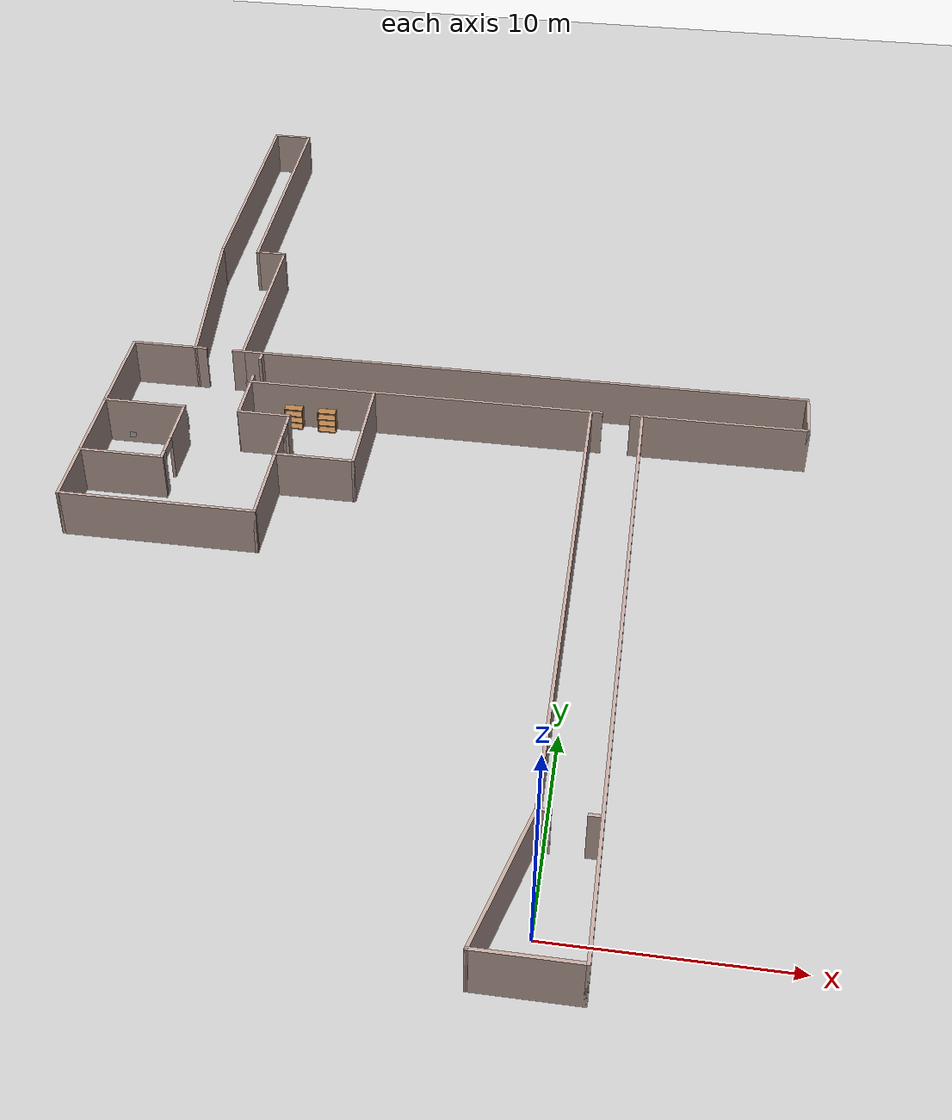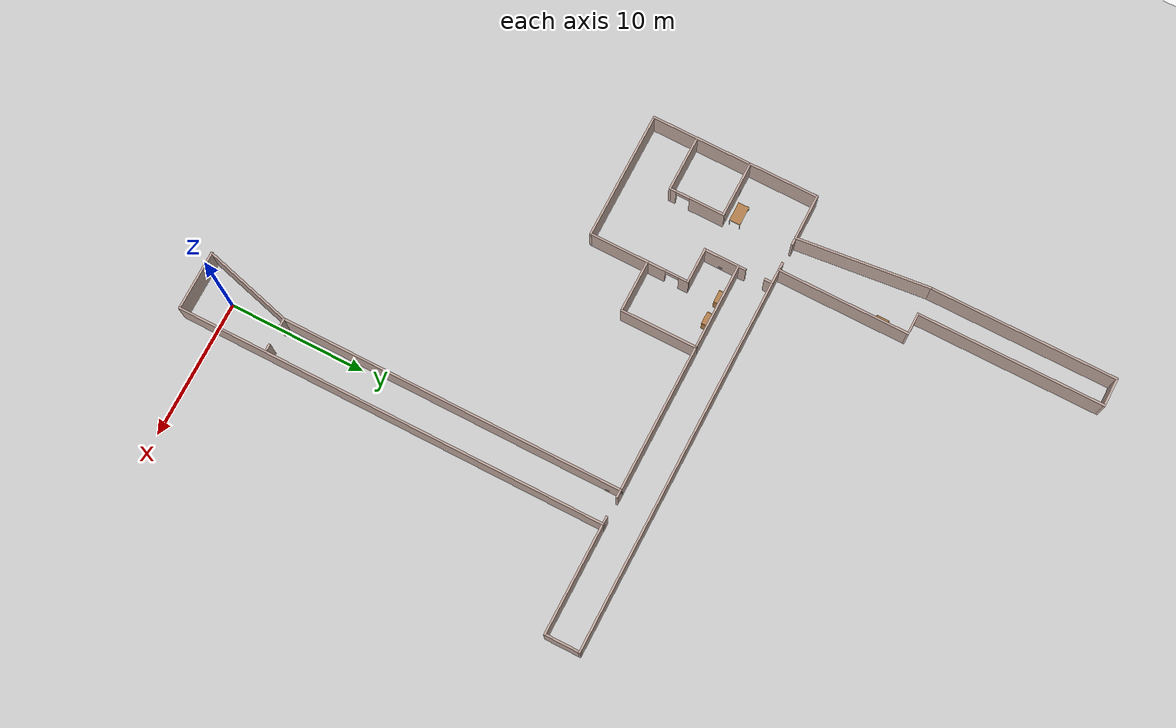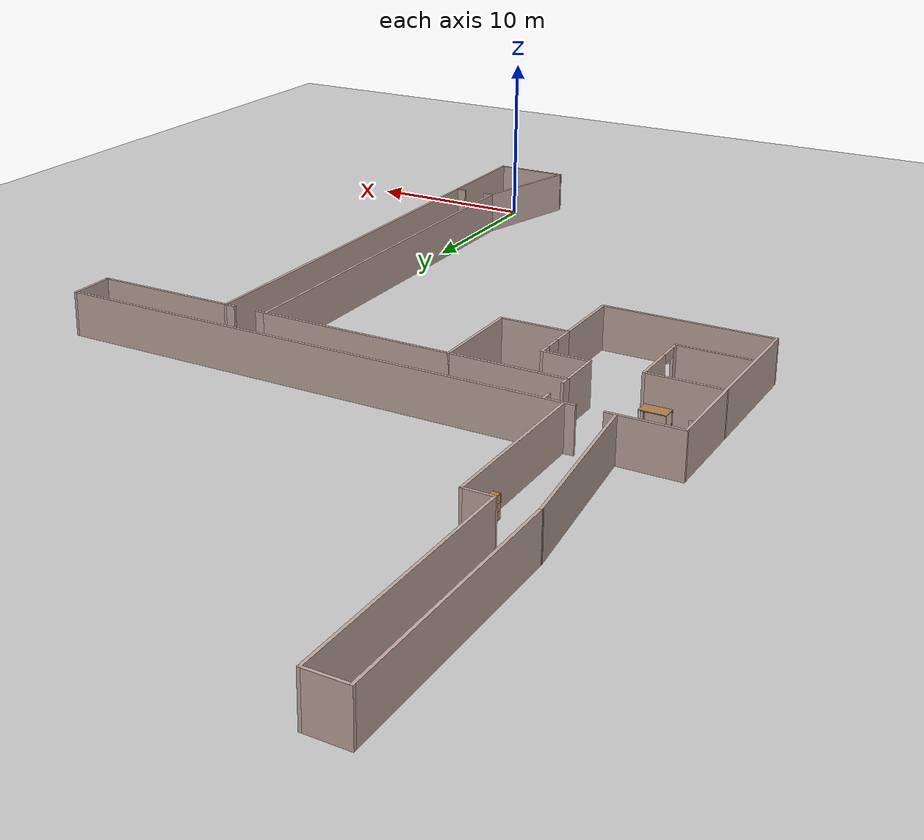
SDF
<sdf version="1.6">
 <world name="default">
  <model name="ground_plane">
   <static>1</static>
   <link name="link">
    <collision name="collision">
     <geometry><plane><normal>0 0 1</normal><size>100 100</size></plane></geometry>
     <surface><friction><ode><mu>100</mu><mu2>50</mu2></ode></friction></surface>
    </collision>
    <visual name="visual">
     <cast_shadows>0</cast_shadows>
     <geometry><plane><normal>0 0 1</normal><size>100 120</size></plane></geometry>
     <material>
      <script><uri>file://media/materials/scripts/gazebo.material</uri><name>Gazebo/Grey</name></script>
     </material>
    </visual>
   </link>
  </model>
  <model name="utias2">
   <pose>-6.98603 26.1314 -0.100807 0 -0 0</pose>
   <link name="Wall_0">
    <collision name="Wall_0_Collision">
     <geometry><box><size>4.4 0.15 2.5</size></box></geometry>
     <pose>0 0 1.25 0 -0 0</pose>
    </collision>
    <visual name="Wall_0_Visual">
     <pose>0 0 1.25 0 -0 0</pose>
     <geometry><box><size>4.4 0.15 2.5</size></box></geometry>
     <material>
      <script><uri>file://media/materials/scripts/gazebo.material</uri><name>Gazebo/Grey</name></script>
      <ambient>0.760784 0.662745 0.627451 1</ambient>
     </material>
    </visual>
    <pose>7.00014 -28.4915 0 0 -0 0</pose>
   </link>
   <link name="Wall_1">
    <collision name="Wall_1_Collision">
     <geometry><box><size>31.65 0.15 2.5</size></box></geometry>
     <pose>0 0 1.25 0 -0 0</pose>
    </collision>
    <visual name="Wall_1_Visual">
     <pose>0 0 1.25 0 -0 0</pose>
     <geometry><box><size>31.65 0.15 2.5</size></box></geometry>
     <material>
      <script><uri>file://media/materials/scripts/gazebo.material</uri><name>Gazebo/Grey</name></script>
      <ambient>0.760784 0.662745 0.627451 1</ambient>
     </material>
    </visual>
    <pose>9.12514 -12.7415 0 0 -0 1.5708</pose>
   </link>
   <link name="Wall_10">
    <collision name="Wall_10_Collision">
     <geometry><box><size>9.70249 0.15 2.5</size></box></geometry>
     <pose>0 0 1.25 0 -0 0</pose>
    </collision>
    <visual name="Wall_10_Visual">
     <pose>0 0 1.25 0 -0 0</pose>
     <geometry><box><size>9.70249 0.15 2.5</size></box></geometry>
     <material>
      <script><uri>file://media/materials/scripts/gazebo.material</uri><name>Gazebo/Grey</name></script>
      <ambient>0.760784 0.662745 0.627451 1</ambient>
     </material>
    </visual>
    <pose>-14.3749 10.2585 0 0 0 -1.46592</pose>
   </link>
   <link name="Wall_12">
    <collision name="Wall_12_Collision">
     <geometry><box><size>3.4 0.15 2.5</size></box></geometry>
     <pose>0 0 1.25 0 -0 0</pose>
    </collision>
    <visual name="Wall_12_Visual">
     <pose>0 0 1.25 0 -0 0</pose>
     <geometry><box><size>3.4 0.15 2.5</size></box></geometry>
     <material>
      <script><uri>file://media/materials/scripts/gazebo.material</uri><name>Gazebo/Grey</name></script>
      <ambient>0.760784 0.662745 0.627451 1</ambient>
     </material>
    </visual>
    <pose>-15.4999 5.50846 0 0 -0 3.14159</pose>
   </link>
   <link name="Wall_14">
    <collision name="Wall_14_Collision">
     <geometry><box><size>12.4 0.15 2.5</size></box></geometry>
     <pose>0 0 1.25 0 -0 0</pose>
    </collision>
    <visual name="Wall_14_Visual">
     <pose>0 0 1.25 0 -0 0</pose>
     <geometry><box><size>12.4 0.15 2.5</size></box></geometry>
     <material>
      <script><uri>file://media/materials/scripts/gazebo.material</uri><name>Gazebo/Grey</name></script>
      <ambient>0.760784 0.662745 0.627451 1</ambient>
     </material>
    </visual>
    <pose>-17.1249 -0.616541 0 0 0 -1.5708</pose>
   </link>
   <link name="Wall_15">
    <collision name="Wall_15_Collision">
     <geometry><box><size>9.40054 0.15 2.5</size></box></geometry>
     <pose>0 0 1.25 0 -0 0</pose>
    </collision>
    <visual name="Wall_15_Visual">
     <pose>0 0 1.25 0 -0 0</pose>
     <geometry><box><size>9.40054 0.15 2.5</size></box></geometry>
     <material>
      <script><uri>file://media/materials/scripts/gazebo.material</uri><name>Gazebo/Grey</name></script>
      <ambient>0.760784 0.662745 0.627451 1</ambient>
     </material>
    </visual>
    <pose>-12.4999 -6.74154 0 0 -0 0</pose>
   </link>
   <link name="Wall_16">
    <collision name="Wall_16_Collision">
     <geometry><box><size>4.4 0.15 2.5</size></box></geometry>
     <pose>0 0 1.25 0 -0 0</pose>
    </collision>
    <visual name="Wall_16_Visual">
     <pose>0 0 1.25 0 -0 0</pose>
     <geometry><box><size>4.4 0.15 2.5</size></box></geometry>
     <material>
      <script><uri>file://media/materials/scripts/gazebo.material</uri><name>Gazebo/Grey</name></script>
      <ambient>0.760784 0.662745 0.627451 1</ambient>
     </material>
    </visual>
    <pose>-7.87486 -4.61654 0 0 -0 1.5708</pose>
   </link>
   <link name="Wall_17">
    <collision name="Wall_17_Collision">
     <geometry><box><size>3.9 0.15 2.5</size></box></geometry>
     <pose>0 0 1.25 0 -0 0</pose>
    </collision>
    <visual name="Wall_17_Visual">
     <pose>0 0 1.25 0 -0 0</pose>
     <geometry><box><size>3.9 0.15 2.5</size></box></geometry>
     <material>
      <script><uri>file://media/materials/scripts/gazebo.material</uri><name>Gazebo/Grey</name></script>
      <ambient>0.760784 0.662745 0.627451 1</ambient>
     </material>
    </visual>
    <pose>-5.99986 -2.49154 0 0 -0 0</pose>
   </link>
   <link name="Wall_18">
    <collision name="Wall_18_Collision">
     <geometry><box><size>5.65 0.15 2.5</size></box></geometry>
     <pose>0 0 1.25 0 -0 0</pose>
    </collision>
    <visual name="Wall_18_Visual">
     <pose>0 0 1.25 0 -0 0</pose>
     <geometry><box><size>5.65 0.15 2.5</size></box></geometry>
     <material>
      <script><uri>file://media/materials/scripts/gazebo.material</uri><name>Gazebo/Grey</name></script>
      <ambient>0.760784 0.662745 0.627451 1</ambient>
     </material>
    </visual>
    <pose>-4.12486 0.258459 0 0 -0 1.5708</pose>
   </link>
   <link name="Wall_19">
    <collision name="Wall_19_Collision">
     <geometry><box><size>10.9 0.15 2.5</size></box></geometry>
     <pose>0 0 1.25 0 -0 0</pose>
    </collision>
    <visual name="Wall_19_Visual">
     <pose>0 0 1.25 0 -0 0</pose>
     <geometry><box><size>10.9 0.15 2.5</size></box></geometry>
     <material>
      <script><uri>file://media/materials/scripts/gazebo.material</uri><name>Gazebo/Grey</name></script>
      <ambient>0.760784 0.662745 0.627451 1</ambient>
     </material>
    </visual>
    <pose>1.25014 3.00846 0 0 -0 0</pose>
   </link>
   <link name="Wall_2">
    <collision name="Wall_2_Collision">
     <geometry><box><size>8.15 0.15 2.5</size></box></geometry>
     <pose>0 0 1.25 0 -0 0</pose>
    </collision>
    <visual name="Wall_2_Visual">
     <pose>0 0 1.25 0 -0 0</pose>
     <geometry><box><size>8.15 0.15 2.5</size></box></geometry>
     <material>
      <script><uri>file://media/materials/scripts/gazebo.material</uri><name>Gazebo/Grey</name></script>
      <ambient>0.760784 0.662745 0.627451 1</ambient>
     </material>
    </visual>
    <pose>13.1251 3.00846 0 0 -0 0</pose>
   </link>
   <link name="Wall_21">
    <collision name="Wall_21_Collision">
     <geometry><box><size>6.4 0.15 2.5</size></box></geometry>
     <pose>0 0 1.25 0 -0 0</pose>
    </collision>
    <visual name="Wall_21_Visual">
     <pose>0 0 1.25 0 -0 0</pose>
     <geometry><box><size>6.4 0.15 2.5</size></box></geometry>
     <material>
      <script><uri>file://media/materials/scripts/gazebo.material</uri><name>Gazebo/Grey</name></script>
      <ambient>0.760784 0.662745 0.627451 1</ambient>
     </material>
    </visual>
    <pose>-7.24986 3.00846 0 0 -0 3.14159</pose>
   </link>
   <link name="Wall_22">
    <collision name="Wall_22_Collision">
     <geometry><box><size>2.65 0.15 2.5</size></box></geometry>
     <pose>0 0 1.25 0 -0 0</pose>
    </collision>
    <visual name="Wall_22_Visual">
     <pose>0 0 1.25 0 -0 0</pose>
     <geometry><box><size>2.65 0.15 2.5</size></box></geometry>
     <material>
      <script><uri>file://media/materials/scripts/gazebo.material</uri><name>Gazebo/Grey</name></script>
      <ambient>0.760784 0.662745 0.627451 1</ambient>
     </material>
    </visual>
    <pose>-10.3749 1.75846 0 0 0 -1.5708</pose>
   </link>
   <link name="Wall_23">
    <collision name="Wall_23_Collision">
     <geometry><box><size>2.65 0.15 2.5</size></box></geometry>
     <pose>0 0 1.25 0 -0 0</pose>
    </collision>
    <visual name="Wall_23_Visual">
     <pose>0 0 1.25 0 -0 0</pose>
     <geometry><box><size>2.65 0.15 2.5</size></box></geometry>
     <material>
      <script><uri>file://media/materials/scripts/gazebo.material</uri><name>Gazebo/Grey</name></script>
      <ambient>0.760784 0.662745 0.627451 1</ambient>
     </material>
    </visual>
    <pose>-9.12486 0.508459 0 0 -0 0</pose>
   </link>
   <link name="Wall_24">
    <pose>-7.87486 -0.991541 0 0 0 -1.5708</pose>
    <visual name="Wall_24_Visual_0">
     <pose>-1.20455 0 1.25 0 -0 0</pose>
     <geometry><box><size>0.740907 0.15 2.5</size></box></geometry>
     <material>
      <script><uri>file://media/materials/scripts/gazebo.material</uri><name>Gazebo/Grey</name></script>
      <ambient>0.760784 0.662745 0.627451 1</ambient>
     </material>
    </visual>
    <collision name="Wall_24_Collision_0">
     <geometry><box><size>0.740907 0.15 2.5</size></box></geometry>
     <pose>-1.20455 0 1.25 0 -0 0</pose>
    </collision>
    <visual name="Wall_24_Visual_1">
     <pose>0.870453 0 1.25 0 -0 0</pose>
     <geometry><box><size>1.40909 0.15 2.5</size></box></geometry>
     <material>
      <script><uri>file://media/materials/scripts/gazebo.material</uri><name>Gazebo/Grey</name></script>
      <ambient>0.760784 0.662745 0.627451 1</ambient>
     </material>
    </visual>
    <collision name="Wall_24_Collision_1">
     <geometry><box><size>1.40909 0.15 2.5</size></box></geometry>
     <pose>0.870453 0 1.25 0 -0 0</pose>
    </collision>
    <visual name="Wall_24_Visual_2">
     <pose>-0.334093 0 2.25 0 -0 0</pose>
     <geometry><box><size>1 0.15 0.5</size></box></geometry>
     <material>
      <script><uri>file://media/materials/scripts/gazebo.material</uri><name>Gazebo/Grey</name></script>
      <ambient>0.760784 0.662745 0.627451 1</ambient>
     </material>
    </visual>
    <collision name="Wall_24_Collision_2">
     <geometry><box><size>1 0.15 0.5</size></box></geometry>
     <pose>-0.334093 0 2.25 0 -0 0</pose>
    </collision>
   </link>
   <link name="Wall_26">
    <collision name="Wall_26_Collision">
     <geometry><box><size>4.15 0.15 2.5</size></box></geometry>
     <pose>0 0 1.25 0 -0 0</pose>
    </collision>
    <visual name="Wall_26_Visual">
     <pose>0 0 1.25 0 -0 0</pose>
     <geometry><box><size>4.15 0.15 2.5</size></box></geometry>
     <material>
      <script><uri>file://media/materials/scripts/gazebo.material</uri><name>Gazebo/Grey</name></script>
      <ambient>0.760784 0.662745 0.627451 1</ambient>
     </material>
    </visual>
    <pose>-15.1249 0.508459 0 0 -0 0</pose>
   </link>
   <link name="Wall_27">
    <pose>-13.1249 -1.49154 0 0 0 -1.5708</pose>
    <visual name="Wall_27_Visual_0">
     <pose>-0.771545 0 1.25 0 -0 0</pose>
     <geometry><box><size>2.60691 0.15 2.5</size></box></geometry>
     <material>
      <script><uri>file://media/materials/scripts/gazebo.material</uri><name>Gazebo/Grey</name></script>
      <ambient>0.760784 0.662745 0.627451 1</ambient>
     </material>
    </visual>
    <collision name="Wall_27_Collision_0">
     <geometry><box><size>2.60691 0.15 2.5</size></box></geometry>
     <pose>-0.771545 0 1.25 0 -0 0</pose>
    </collision>
    <visual name="Wall_27_Visual_1">
     <pose>1.80346 0 1.25 0 -0 0</pose>
     <geometry><box><size>0.543089 0.15 2.5</size></box></geometry>
     <material>
      <script><uri>file://media/materials/scripts/gazebo.material</uri><name>Gazebo/Grey</name></script>
      <ambient>0.760784 0.662745 0.627451 1</ambient>
     </material>
    </visual>
    <collision name="Wall_27_Collision_1">
     <geometry><box><size>0.543089 0.15 2.5</size></box></geometry>
     <pose>1.80346 0 1.25 0 -0 0</pose>
    </collision>
    <visual name="Wall_27_Visual_2">
     <pose>1.03191 0 2.25 0 -0 0</pose>
     <geometry><box><size>1 0.15 0.5</size></box></geometry>
     <material>
      <script><uri>file://media/materials/scripts/gazebo.material</uri><name>Gazebo/Grey</name></script>
      <ambient>0.760784 0.662745 0.627451 1</ambient>
     </material>
    </visual>
    <collision name="Wall_27_Collision_2">
     <geometry><box><size>1 0.15 0.5</size></box></geometry>
     <pose>1.03191 0 2.25 0 -0 0</pose>
    </collision>
   </link>
   <link name="Wall_28">
    <collision name="Wall_28_Collision">
     <geometry><box><size>4.15 0.15 2.5</size></box></geometry>
     <pose>0 0 1.25 0 -0 0</pose>
    </collision>
    <visual name="Wall_28_Visual">
     <pose>0 0 1.25 0 -0 0</pose>
     <geometry><box><size>4.15 0.15 2.5</size></box></geometry>
     <material>
      <script><uri>file://media/materials/scripts/gazebo.material</uri><name>Gazebo/Grey</name></script>
      <ambient>0.760784 0.662745 0.627451 1</ambient>
     </material>
    </visual>
    <pose>-15.1249 -3.49154 0 0 -0 3.14159</pose>
   </link>
   <link name="Wall_3">
    <collision name="Wall_3_Collision">
     <geometry><box><size>2.65 0.15 2.5</size></box></geometry>
     <pose>0 0 1.25 0 -0 0</pose>
    </collision>
    <visual name="Wall_3_Visual">
     <pose>0 0 1.25 0 -0 0</pose>
     <geometry><box><size>2.65 0.15 2.5</size></box></geometry>
     <material>
      <script><uri>file://media/materials/scripts/gazebo.material</uri><name>Gazebo/Grey</name></script>
      <ambient>0.760784 0.662745 0.627451 1</ambient>
     </material>
    </visual>
    <pose>17.1251 4.25846 0 0 -0 1.5708</pose>
   </link>
   <link name="Wall_30">
    <collision name="Wall_30_Collision">
     <geometry><box><size>25.15 0.15 2.5</size></box></geometry>
     <pose>0 0 1.25 0 -0 0</pose>
    </collision>
    <visual name="Wall_30_Visual">
     <pose>0 0 1.25 0 -0 0</pose>
     <geometry><box><size>25.15 0.15 2.5</size></box></geometry>
     <material>
      <script><uri>file://media/materials/scripts/gazebo.material</uri><name>Gazebo/Grey</name></script>
      <ambient>0.760784 0.662745 0.627451 1</ambient>
     </material>
    </visual>
    <pose>6.62514 -9.49154 0 0 0 -1.5708</pose>
   </link>
   <link name="Wall_31">
    <collision name="Wall_31_Collision">
     <geometry><box><size>6.88146 0.15 2.5</size></box></geometry>
     <pose>0 0 1.25 0 -0 0</pose>
    </collision>
    <visual name="Wall_31_Visual">
     <pose>0 0 1.25 0 -0 0</pose>
     <geometry><box><size>6.88146 0.15 2.5</size></box></geometry>
     <material>
      <script><uri>file://media/materials/scripts/gazebo.material</uri><name>Gazebo/Grey</name></script>
      <ambient>0.760784 0.662745 0.627451 1</ambient>
     </material>
    </visual>
    <pose>5.75014 -25.2415 0 0 0 -1.83379</pose>
   </link>
   <link name="Wall_33">
    <collision name="Wall_33_Collision">
     <geometry><box><size>0.65 0.15 2.5</size></box></geometry>
     <pose>0 0 1.25 0 -0 0</pose>
    </collision>
    <visual name="Wall_33_Visual">
     <pose>0 0 1.25 0 -0 0</pose>
     <geometry><box><size>0.65 0.15 2.5</size></box></geometry>
     <material>
      <script><uri>file://media/materials/scripts/gazebo.material</uri><name>Gazebo/Grey</name></script>
      <ambient>0.760784 0.662745 0.627451 1</ambient>
     </material>
    </visual>
    <pose>6.87514 -21.9915 0 0 -0 0</pose>
   </link>
   <link name="Wall_35">
    <collision name="Wall_35_Collision">
     <geometry><box><size>0.65 0.15 2.5</size></box></geometry>
     <pose>0 0 1.25 0 -0 0</pose>
    </collision>
    <visual name="Wall_35_Visual">
     <pose>0 0 1.25 0 -0 0</pose>
     <geometry><box><size>0.65 0.15 2.5</size></box></geometry>
     <material>
      <script><uri>file://media/materials/scripts/gazebo.material</uri><name>Gazebo/Grey</name></script>
      <ambient>0.760784 0.662745 0.627451 1</ambient>
     </material>
    </visual>
    <pose>8.87514 -21.9915 0 0 -0 3.14159</pose>
   </link>
   <link name="Wall_37">
    <collision name="Wall_37_Collision">
     <geometry><box><size>0.65 0.15 2.5</size></box></geometry>
     <pose>0 0 1.25 0 -0 0</pose>
    </collision>
    <visual name="Wall_37_Visual">
     <pose>0 0 1.25 0 -0 0</pose>
     <geometry><box><size>0.65 0.15 2.5</size></box></geometry>
     <material>
      <script><uri>file://media/materials/scripts/gazebo.material</uri><name>Gazebo/Grey</name></script>
      <ambient>0.760784 0.662745 0.627451 1</ambient>
     </material>
    </visual>
    <pose>8.87514 3.00846 0 0 -0 3.14159</pose>
   </link>
   <link name="Wall_39">
    <collision name="Wall_39_Collision">
     <geometry><box><size>0.65 0.15 2.5</size></box></geometry>
     <pose>0 0 1.25 0 -0 0</pose>
    </collision>
    <visual name="Wall_39_Visual">
     <pose>0 0 1.25 0 -0 0</pose>
     <geometry><box><size>0.65 0.15 2.5</size></box></geometry>
     <material>
      <script><uri>file://media/materials/scripts/gazebo.material</uri><name>Gazebo/Grey</name></script>
      <ambient>0.760784 0.662745 0.627451 1</ambient>
     </material>
    </visual>
    <pose>6.87514 3.00846 0 0 -0 0</pose>
   </link>
   <link name="Wall_4">
    <collision name="Wall_4_Collision">
     <geometry><box><size>28.65 0.15 2.5</size></box></geometry>
     <pose>0 0 1.25 0 -0 0</pose>
    </collision>
    <visual name="Wall_4_Visual">
     <pose>0 0 1.25 0 -0 0</pose>
     <geometry><box><size>28.65 0.15 2.5</size></box></geometry>
     <material>
      <script><uri>file://media/materials/scripts/gazebo.material</uri><name>Gazebo/Grey</name></script>
      <ambient>0.760784 0.662745 0.627451 1</ambient>
     </material>
    </visual>
    <pose>2.87514 5.50846 0 0 -0 3.14159</pose>
   </link>
   <link name="Wall_41">
    <collision name="Wall_41_Collision">
     <geometry><box><size>0.65 0.15 2.5</size></box></geometry>
     <pose>0 0 1.25 0 -0 0</pose>
    </collision>
    <visual name="Wall_41_Visual">
     <pose>0 0 1.25 0 -0 0</pose>
     <geometry><box><size>0.65 0.15 2.5</size></box></geometry>
     <material>
      <script><uri>file://media/materials/scripts/gazebo.material</uri><name>Gazebo/Grey</name></script>
      <ambient>0.760784 0.662745 0.627451 1</ambient>
     </material>
    </visual>
    <pose>-10.3749 3.25846 0 0 -0 1.5708</pose>
   </link>
   <link name="Wall_43">
    <collision name="Wall_43_Collision">
     <geometry><box><size>0.65 0.15 2.5</size></box></geometry>
     <pose>0 0 1.25 0 -0 0</pose>
    </collision>
    <visual name="Wall_43_Visual">
     <pose>0 0 1.25 0 -0 0</pose>
     <geometry><box><size>0.65 0.15 2.5</size></box></geometry>
     <material>
      <script><uri>file://media/materials/scripts/gazebo.material</uri><name>Gazebo/Grey</name></script>
      <ambient>0.760784 0.662745 0.627451 1</ambient>
     </material>
    </visual>
    <pose>-10.3749 5.25846 0 0 0 -1.5708</pose>
   </link>
   <link name="Wall_45">
    <collision name="Wall_45_Collision">
     <geometry><box><size>0.65 0.15 2.5</size></box></geometry>
     <pose>0 0 1.25 0 -0 0</pose>
    </collision>
    <visual name="Wall_45_Visual">
     <pose>0 0 1.25 0 -0 0</pose>
     <geometry><box><size>0.65 0.15 2.5</size></box></geometry>
     <material>
      <script><uri>file://media/materials/scripts/gazebo.material</uri><name>Gazebo/Grey</name></script>
      <ambient>0.760784 0.662745 0.627451 1</ambient>
     </material>
    </visual>
    <pose>-11.6249 5.50846 0 0 -0 3.14159</pose>
   </link>
   <link name="Wall_47">
    <collision name="Wall_47_Collision">
     <geometry><box><size>0.65 0.15 2.5</size></box></geometry>
     <pose>0 0 1.25 0 -0 0</pose>
    </collision>
    <visual name="Wall_47_Visual">
     <pose>0 0 1.25 0 -0 0</pose>
     <geometry><box><size>0.65 0.15 2.5</size></box></geometry>
     <material>
      <script><uri>file://media/materials/scripts/gazebo.material</uri><name>Gazebo/Grey</name></script>
      <ambient>0.760784 0.662745 0.627451 1</ambient>
     </material>
    </visual>
    <pose>-13.6249 5.50846 0 0 -0 0</pose>
   </link>
   <link name="Wall_5">
    <collision name="Wall_5_Collision">
     <geometry><box><size>9.65 0.15 2.5</size></box></geometry>
     <pose>0 0 1.25 0 -0 0</pose>
    </collision>
    <visual name="Wall_5_Visual">
     <pose>0 0 1.25 0 -0 0</pose>
     <geometry><box><size>9.65 0.15 2.5</size></box></geometry>
     <material>
      <script><uri>file://media/materials/scripts/gazebo.material</uri><name>Gazebo/Grey</name></script>
      <ambient>0.760784 0.662745 0.627451 1</ambient>
     </material>
    </visual>
    <pose>-11.3749 10.2585 0 0 -0 1.5708</pose>
   </link>
   <link name="Wall_6">
    <collision name="Wall_6_Collision">
     <geometry><box><size>1.65 0.15 2.5</size></box></geometry>
     <pose>0 0 1.25 0 -0 0</pose>
    </collision>
    <visual name="Wall_6_Visual">
     <pose>0 0 1.25 0 -0 0</pose>
     <geometry><box><size>1.65 0.15 2.5</size></box></geometry>
     <material>
      <script><uri>file://media/materials/scripts/gazebo.material</uri><name>Gazebo/Grey</name></script>
      <ambient>0.760784 0.662745 0.627451 1</ambient>
     </material>
    </visual>
    <pose>-12.1249 15.0085 0 0 -0 3.14159</pose>
   </link>
   <link name="Wall_7">
    <collision name="Wall_7_Collision">
     <geometry><box><size>13.65 0.15 2.5</size></box></geometry>
     <pose>0 0 1.25 0 -0 0</pose>
    </collision>
    <visual name="Wall_7_Visual">
     <pose>0 0 1.25 0 -0 0</pose>
     <geometry><box><size>13.65 0.15 2.5</size></box></geometry>
     <material>
      <script><uri>file://media/materials/scripts/gazebo.material</uri><name>Gazebo/Grey</name></script>
      <ambient>0.760784 0.662745 0.627451 1</ambient>
     </material>
    </visual>
    <pose>-12.8749 21.7585 0 0 -0 1.5708</pose>
   </link>
   <link name="Wall_8">
    <collision name="Wall_8_Collision">
     <geometry><box><size>2.15 0.15 2.5</size></box></geometry>
     <pose>0 0 1.25 0 -0 0</pose>
    </collision>
    <visual name="Wall_8_Visual">
     <pose>0 0 1.25 0 -0 0</pose>
     <geometry><box><size>2.15 0.15 2.5</size></box></geometry>
     <material>
      <script><uri>file://media/materials/scripts/gazebo.material</uri><name>Gazebo/Grey</name></script>
      <ambient>0.760784 0.662745 0.627451 1</ambient>
     </material>
    </visual>
    <pose>-13.8749 28.5085 0 0 -0 3.14159</pose>
   </link>
   <link name="Wall_9">
    <collision name="Wall_9_Collision">
     <geometry><box><size>13.65 0.15 2.5</size></box></geometry>
     <pose>0 0 1.25 0 -0 0</pose>
    </collision>
    <visual name="Wall_9_Visual">
     <pose>0 0 1.25 0 -0 0</pose>
     <geometry><box><size>13.65 0.15 2.5</size></box></geometry>
     <material>
      <script><uri>file://media/materials/scripts/gazebo.material</uri><name>Gazebo/Grey</name></script>
      <ambient>0.760784 0.662745 0.627451 1</ambient>
     </material>
    </visual>
    <pose>-14.8749 21.7585 0 0 0 -1.5708</pose>
   </link>
   <static>1</static>
  </model>
  <model name="bookshelf_1">
   <static>1</static>
   <link name="link">
    <inertial><mass>1</mass></inertial>
    <collision name="back">
     <pose>0 0.005 0.6 0 -0 0</pose>
     <geometry><box><size>0.9 0.01 1.2</size></box></geometry>
    </collision>
    <visual name="visual1">
     <pose>0 0.005 0.6 0 -0 0</pose>
     <geometry><box><size>0.9 0.01 1.2</size></box></geometry>
     <material>
      <script><uri>file://media/materials/scripts/gazebo.material</uri><name>Gazebo/Wood</name></script>
     </material>
    </visual>
    <collision name="left_side">
     <pose>0.45 -0.195 0.6 0 -0 0</pose>
     <geometry><box><size>0.02 0.4 1.2</size></box></geometry>
    </collision>
    <visual name="visual2">
     <pose>0.45 -0.195 0.6 0 -0 0</pose>
     <geometry><box><size>0.02 0.4 1.2</size></box></geometry>
     <material>
      <script><uri>file://media/materials/scripts/gazebo.material</uri><name>Gazebo/Wood</name></script>
     </material>
    </visual>
    <collision name="right_side">
     <pose>-0.45 -0.195 0.6 0 -0 0</pose>
     <geometry><box><size>0.02 0.4 1.2</size></box></geometry>
    </collision>
    <visual name="visual3">
     <pose>-0.45 -0.195 0.6 0 -0 0</pose>
     <geometry><box><size>0.02 0.4 1.2</size></box></geometry>
     <material>
      <script><uri>file://media/materials/scripts/gazebo.material</uri><name>Gazebo/Wood</name></script>
     </material>
    </visual>
    <collision name="bottom">
     <pose>0 -0.195 0.03 0 -0 0</pose>
     <geometry><box><size>0.88 0.4 0.06</size></box></geometry>
    </collision>
    <visual name="visual4">
     <pose>0 -0.195 0.03 0 -0 0</pose>
     <geometry><box><size>0.88 0.4 0.06</size></box></geometry>
     <material>
      <script><uri>file://media/materials/scripts/gazebo.material</uri><name>Gazebo/Wood</name></script>
     </material>
    </visual>
    <collision name="top">
     <pose>0 -0.195 1.19 0 -0 0</pose>
     <geometry><box><size>0.88 0.4 0.02</size></box></geometry>
    </collision>
    <visual name="visual5">
     <pose>0 -0.195 1.19 0 -0 0</pose>
     <geometry><box><size>0.88 0.4 0.02</size></box></geometry>
     <material>
      <script><uri>file://media/materials/scripts/gazebo.material</uri><name>Gazebo/Wood</name></script>
     </material>
    </visual>
    <collision name="low_shelf">
     <pose>0 -0.195 0.43 0 -0 0</pose>
     <geometry><box><size>0.88 0.4 0.02</size></box></geometry>
    </collision>
    <visual name="visual6">
     <pose>0 -0.195 0.43 0 -0 0</pose>
     <geometry><box><size>0.88 0.4 0.02</size></box></geometry>
     <material>
      <script><uri>file://media/materials/scripts/gazebo.material</uri><name>Gazebo/Wood</name></script>
     </material>
    </visual>
    <collision name="high_shelf">
     <pose>0 -0.195 0.8 0 -0 0</pose>
     <geometry><box><size>0.88 0.4 0.02</size></box></geometry>
    </collision>
    <visual name="visual7">
     <pose>0 -0.195 0.8 0 -0 0</pose>
     <geometry><box><size>0.88 0.4 0.02</size></box></geometry>
     <material>
      <script><uri>file://media/materials/scripts/gazebo.material</uri><name>Gazebo/Wood</name></script>
     </material>
    </visual>
   </link>
   <pose>-13.4786 29.0069 0 0 -0 0</pose>
  </model>
  <model name="bookshelf_2">
   <static>1</static>
   <link name="link">
    <inertial><mass>1</mass></inertial>
    <collision name="back">
     <pose>0 0.005 0.6 0 -0 0</pose>
     <geometry><box><size>0.9 0.01 1.2</size></box></geometry>
    </collision>
    <visual name="visual1">
     <pose>0 0.005 0.6 0 -0 0</pose>
     <geometry><box><size>0.9 0.01 1.2</size></box></geometry>
     <material>
      <script><uri>file://media/materials/scripts/gazebo.material</uri><name>Gazebo/Wood</name></script>
     </material>
    </visual>
    <collision name="left_side">
     <pose>0.45 -0.195 0.6 0 -0 0</pose>
     <geometry><box><size>0.02 0.4 1.2</size></box></geometry>
    </collision>
    <visual name="visual2">
     <pose>0.45 -0.195 0.6 0 -0 0</pose>
     <geometry><box><size>0.02 0.4 1.2</size></box></geometry>
     <material>
      <script><uri>file://media/materials/scripts/gazebo.material</uri><name>Gazebo/Wood</name></script>
     </material>
    </visual>
    <collision name="right_side">
     <pose>-0.45 -0.195 0.6 0 -0 0</pose>
     <geometry><box><size>0.02 0.4 1.2</size></box></geometry>
    </collision>
    <visual name="visual3">
     <pose>-0.45 -0.195 0.6 0 -0 0</pose>
     <geometry><box><size>0.02 0.4 1.2</size></box></geometry>
     <material>
      <script><uri>file://media/materials/scripts/gazebo.material</uri><name>Gazebo/Wood</name></script>
     </material>
    </visual>
    <collision name="bottom">
     <pose>0 -0.195 0.03 0 -0 0</pose>
     <geometry><box><size>0.88 0.4 0.06</size></box></geometry>
    </collision>
    <visual name="visual4">
     <pose>0 -0.195 0.03 0 -0 0</pose>
     <geometry><box><size>0.88 0.4 0.06</size></box></geometry>
     <material>
      <script><uri>file://media/materials/scripts/gazebo.material</uri><name>Gazebo/Wood</name></script>
     </material>
    </visual>
    <collision name="top">
     <pose>0 -0.195 1.19 0 -0 0</pose>
     <geometry><box><size>0.88 0.4 0.02</size></box></geometry>
    </collision>
    <visual name="visual5">
     <pose>0 -0.195 1.19 0 -0 0</pose>
     <geometry><box><size>0.88 0.4 0.02</size></box></geometry>
     <material>
      <script><uri>file://media/materials/scripts/gazebo.material</uri><name>Gazebo/Wood</name></script>
     </material>
    </visual>
    <collision name="low_shelf">
     <pose>0 -0.195 0.43 0 -0 0</pose>
     <geometry><box><size>0.88 0.4 0.02</size></box></geometry>
    </collision>
    <visual name="visual6">
     <pose>0 -0.195 0.43 0 -0 0</pose>
     <geometry><box><size>0.88 0.4 0.02</size></box></geometry>
     <material>
      <script><uri>file://media/materials/scripts/gazebo.material</uri><name>Gazebo/Wood</name></script>
     </material>
    </visual>
    <collision name="high_shelf">
     <pose>0 -0.195 0.8 0 -0 0</pose>
     <geometry><box><size>0.88 0.4 0.02</size></box></geometry>
    </collision>
    <visual name="visual7">
     <pose>0 -0.195 0.8 0 -0 0</pose>
     <geometry><box><size>0.88 0.4 0.02</size></box></geometry>
     <material>
      <script><uri>file://media/materials/scripts/gazebo.material</uri><name>Gazebo/Wood</name></script>
     </material>
    </visual>
   </link>
   <pose>-15.1763 29.0574 0 0 -0 0</pose>
  </model>
  <model name="table_1">
   <static>0</static>
   <link name="link">
    <collision name="surface">
     <pose>0 0 1 0 -0 0</pose>
     <geometry><box><size>1.5 0.8 0.03</size></box></geometry>
     <surface><friction><ode><mu>0.6</mu><mu2>0.6</mu2></ode></friction></surface>
    </collision>
    <visual name="visual1">
     <pose>0 0 1 0 -0 0</pose>
     <geometry><box><size>1.4 0.8 0.04</size></box></geometry>
     <material>
      <script><uri>file://media/materials/scripts/gazebo.material</uri><name>Gazebo/Wood</name></script>
     </material>
    </visual>
    <collision name="front_left_leg">
     <pose>0.68 0.38 0.5 0 -0 0</pose>
     <geometry><cylinder><radius>0.02</radius><length>1</length></cylinder></geometry>
    </collision>
    <visual name="front_left_leg">
     <pose>0.68 0.38 0.5 0 -0 0</pose>
     <geometry><cylinder><radius>0.02</radius><length>1</length></cylinder></geometry>
     <material>
      <script><uri>file://media/materials/scripts/gazebo.material</uri><name>Gazebo/Grey</name></script>
     </material>
    </visual>
    <collision name="front_right_leg">
     <pose>0.68 -0.38 0.5 0 -0 0</pose>
     <geometry><cylinder><radius>0.02</radius><length>1</length></cylinder></geometry>
    </collision>
    <visual name="front_right_leg">
     <pose>0.68 -0.38 0.5 0 -0 0</pose>
     <geometry><cylinder><radius>0.02</radius><length>1</length></cylinder></geometry>
     <material>
      <script><uri>file://media/materials/scripts/gazebo.material</uri><name>Gazebo/Grey</name></script>
     </material>
    </visual>
    <collision name="back_right_leg">
     <pose>-0.68 -0.38 0.5 0 -0 0</pose>
     <geometry><cylinder><radius>0.02</radius><length>1</length></cylinder></geometry>
    </collision>
    <visual name="back_right_leg">
     <pose>-0.68 -0.38 0.5 0 -0 0</pose>
     <geometry><cylinder><radius>0.02</radius><length>1</length></cylinder></geometry>
     <material>
      <script><uri>file://media/materials/scripts/gazebo.material</uri><name>Gazebo/Grey</name></script>
     </material>
    </visual>
    <collision name="back_left_leg">
     <pose>-0.68 0.38 0.5 0 -0 0</pose>
     <geometry><cylinder><radius>0.02</radius><length>1</length></cylinder></geometry>
    </collision>
    <visual name="back_left_leg">
     <pose>-0.68 0.38 0.5 0 -0 0</pose>
     <geometry><cylinder><radius>0.02</radius><length>1</length></cylinder></geometry>
     <material>
      <script><uri>file://media/materials/scripts/gazebo.material</uri><name>Gazebo/Grey</name></script>
     </material>
    </visual>
    <inertial>
     <inertia><ixx>1</ixx><ixy>0</ixy><ixz>0</ixz><iyy>1</iyy><iyz>0</iyz><izz>1</izz></inertia>
     <mass>1</mass>
    </inertial>
   </link>
   <pose>-21.0659 27.4242 0 0 -0 0</pose>
  </model>
  <model name="bookshelf_3">
   <static>1</static>
   <link name="link">
    <inertial><mass>1</mass></inertial>
    <collision name="back">
     <pose>0 0.005 0.6 0 -0 0</pose>
     <geometry><box><size>0.9 0.01 1.2</size></box></geometry>
    </collision>
    <visual name="visual1">
     <pose>0 0.005 0.6 0 -0 0</pose>
     <geometry><box><size>0.9 0.01 1.2</size></box></geometry>
     <material>
      <script><uri>file://media/materials/scripts/gazebo.material</uri><name>Gazebo/Wood</name></script>
     </material>
    </visual>
    <collision name="left_side">
     <pose>0.45 -0.195 0.6 0 -0 0</pose>
     <geometry><box><size>0.02 0.4 1.2</size></box></geometry>
    </collision>
    <visual name="visual2">
     <pose>0.45 -0.195 0.6 0 -0 0</pose>
     <geometry><box><size>0.02 0.4 1.2</size></box></geometry>
     <material>
      <script><uri>file://media/materials/scripts/gazebo.material</uri><name>Gazebo/Wood</name></script>
     </material>
    </visual>
    <collision name="right_side">
     <pose>-0.45 -0.195 0.6 0 -0 0</pose>
     <geometry><box><size>0.02 0.4 1.2</size></box></geometry>
    </collision>
    <visual name="visual3">
     <pose>-0.45 -0.195 0.6 0 -0 0</pose>
     <geometry><box><size>0.02 0.4 1.2</size></box></geometry>
     <material>
      <script><uri>file://media/materials/scripts/gazebo.material</uri><name>Gazebo/Wood</name></script>
     </material>
    </visual>
    <collision name="bottom">
     <pose>0 -0.195 0.03 0 -0 0</pose>
     <geometry><box><size>0.88 0.4 0.06</size></box></geometry>
    </collision>
    <visual name="visual4">
     <pose>0 -0.195 0.03 0 -0 0</pose>
     <geometry><box><size>0.88 0.4 0.06</size></box></geometry>
     <material>
      <script><uri>file://media/materials/scripts/gazebo.material</uri><name>Gazebo/Wood</name></script>
     </material>
    </visual>
    <collision name="top">
     <pose>0 -0.195 1.19 0 -0 0</pose>
     <geometry><box><size>0.88 0.4 0.02</size></box></geometry>
    </collision>
    <visual name="visual5">
     <pose>0 -0.195 1.19 0 -0 0</pose>
     <geometry><box><size>0.88 0.4 0.02</size></box></geometry>
     <material>
      <script><uri>file://media/materials/scripts/gazebo.material</uri><name>Gazebo/Wood</name></script>
     </material>
    </visual>
    <collision name="low_shelf">
     <pose>0 -0.195 0.43 0 -0 0</pose>
     <geometry><box><size>0.88 0.4 0.02</size></box></geometry>
    </collision>
    <visual name="visual6">
     <pose>0 -0.195 0.43 0 -0 0</pose>
     <geometry><box><size>0.88 0.4 0.02</size></box></geometry>
     <material>
      <script><uri>file://media/materials/scripts/gazebo.material</uri><name>Gazebo/Wood</name></script>
     </material>
    </visual>
    <collision name="high_shelf">
     <pose>0 -0.195 0.8 0 -0 0</pose>
     <geometry><box><size>0.88 0.4 0.02</size></box></geometry>
    </collision>
    <visual name="visual7">
     <pose>0 -0.195 0.8 0 -0 0</pose>
     <geometry><box><size>0.88 0.4 0.02</size></box></geometry>
     <material>
      <script><uri>file://media/materials/scripts/gazebo.material</uri><name>Gazebo/Wood</name></script>
     </material>
    </visual>
   </link>
   <pose>-18.509 39.2023 0.016066 0 0 -1.58496</pose>
  </model>
  <model name="qr_0_0">
   <pose>-18.1919 31.5524 0.4 -1.5708 -4e-06 -3.1247</pose>
   <static>1</static>
   <link name="link">
    <visual name="visual">
     <geometry><mesh><uri>model://qr_0/Object.dae</uri><scale>1 1 1</scale></mesh></geometry>
    </visual>
   </link>
  </model>
  <model name="qr_1">
   <pose>-22.8914 26.5544 0.4 -1.5708 -4e-06 -3.12738</pose>
   <static>1</static>
   <link name="link">
    <visual name="visual">
     <geometry><mesh><uri>model://qr_1/Object.dae</uri><scale>1 1 1</scale></mesh></geometry>
    </visual>
   </link>
  </model>
  <model name="qr_2_0">
   <pose>-18.4569 40.3618 0.399998 -1.57079 -0 1.50209</pose>
   <static>1</static>
   <link name="link">
    <visual name="visual">
     <geometry><mesh><uri>model://qr_2/Object.dae</uri><scale>1 1 1</scale></mesh></geometry>
    </visual>
   </link>
  </model>
  <model name="qr_4">
   <pose>-17.2582 27.9248 0.4 -1.5708 -0 -1.5708</pose>
   <static>1</static>
   <link name="link">
    <visual name="visual">
     <geometry><mesh><uri>model://qr_4/Object.dae</uri><scale>1 1 1</scale></mesh></geometry>
    </visual>
   </link>
  </model>
  <model name="qr_5">
   <pose>-0.263998 28.2123 0.4 -1.5708 -0 -1.5708</pose>
   <static>1</static>
   <link name="link">
    <visual name="visual">
     <geometry><mesh><uri>model://qr_5/Object.dae</uri><scale>1 1 1</scale></mesh></geometry>
    </visual>
   </link>
  </model>
  <model name="qr_6">
   <pose>-20.4841 54.5349 0.4 -1.5708 -4e-06 -3.08128</pose>
   <static>1</static>
   <link name="link">
    <visual name="visual">
     <geometry><mesh><uri>model://qr_6/Object.dae</uri><scale>1 1 1</scale></mesh></geometry>
    </visual>
   </link>
  </model>
  <model name="qr_7">
   <pose>8.57966 31.5489 0.4 -1.5708 -4e-06 3.14154</pose>
   <static>1</static>
   <link name="link">
    <visual name="visual">
     <geometry><mesh><uri>model://qr_7/Object.dae</uri><scale>1 1 1</scale></mesh></geometry>
    </visual>
   </link>
  </model>
  <model name="qr_8">
   <pose>-22.594 26.7419 0.407567 -1.58352 0.001101 0.007881</pose>
   <static>1</static>
   <link name="link">
    <visual name="visual">
     <geometry><mesh><uri>model://qr_8/Object.dae</uri><scale>1 1 1</scale></mesh></geometry>
    </visual>
   </link>
  </model>
 </world>
</sdf>
